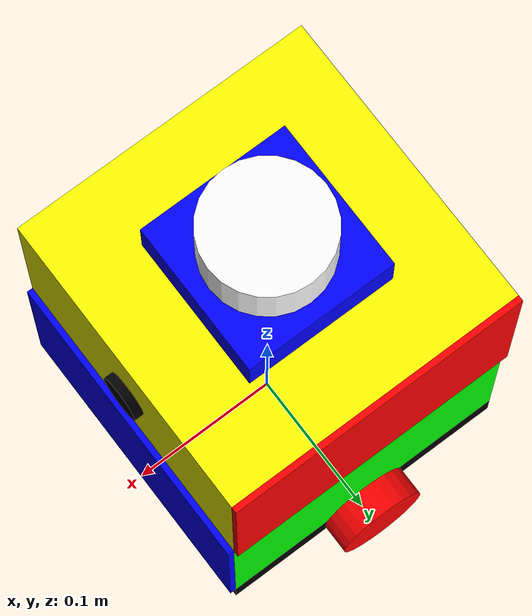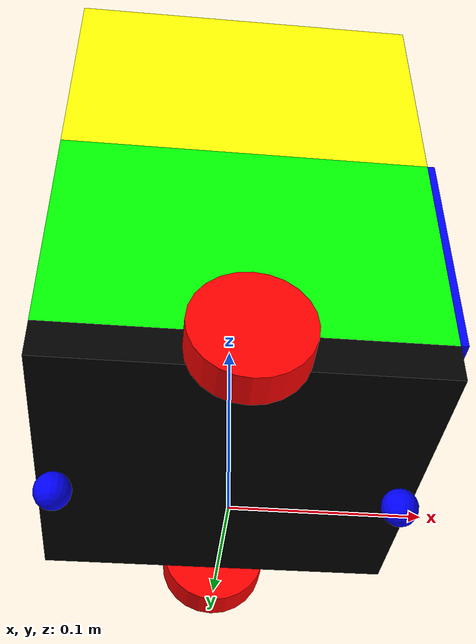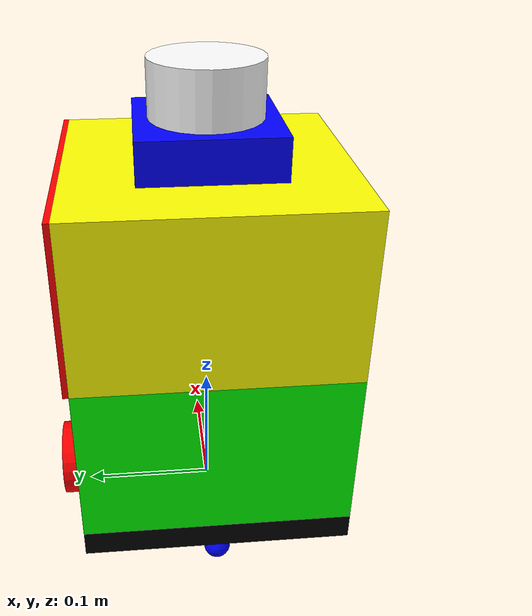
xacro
<?xml version="1.0"?>
<robot name="campus_delivery_robot" xmlns:xacro="http://www.ros.org/wiki/xacro">
  <xacro:include filename="$(find campus_delivery_robot)/urdf/materials.xacro"/>
  <xacro:include filename="$(find campus_delivery_robot)/urdf/base/bot_base.xacro"/>
  <xacro:include filename="$(find campus_delivery_robot)/urdf/body/main_body.xacro"/>
  <xacro:include filename="$(find campus_delivery_robot)/urdf/sensors/bot_lidar.xacro"/>
  <xacro:include filename="$(find campus_delivery_robot)/urdf/wheels/bot_wheels.xacro"/>
  <xacro:include filename="$(find campus_delivery_robot)/urdf/sensors/bot_cam.xacro"/>
  <xacro:bot_base prefix=""/>
  <xacro:cam_face prefix=""/>
  <xacro:main_body_below_hatch prefix=""/>
  <xacro:below_hatch_door prefix=""/>
  <xacro:above_hatch_door prefix=""/>
  <xacro:main_body_above_hatch prefix=""/>
  <xacro:bot_lidar prefix=""/>
  <xacro:bot_wheel prefix="left_" reflect="1"/>
  <xacro:bot_wheel prefix="right_" reflect="-1"/>
  <xacro:bot_castor prefix="front_" reflect="1"/>
  <xacro:bot_castor prefix="rear_" reflect="-1"/>
</robot>

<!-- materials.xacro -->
<robot xmlns:xacro="http://www.ros.org/wiki/xacro" name="campus_delivery_robot">
  <material name="red">
    <color rgba="1 0 0 1.0"/>
  </material>
  <material name="yellow">
    <color rgba="1 1 0 1.0"/>
  </material>
  <material name="white">
    <color rgba="1 1 1 1.0"/>
  </material>
  <material name="green">
    <color rgba="0 1 0 1.0"/>
  </material>
  <material name="blue">
    <color rgba="0 0 1 1.0"/>
  </material>
  <material name="grey">
    <color rgba="0.5 0.5 0.5 1.0"/>
    </material>
  <material name="black">
    <color rgba="0 0 0 1.0"/>
  </material>

</robot>

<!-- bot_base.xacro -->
<robot xmlns:xacro="http://www.ros.org/wiki/xacro" name="campus_delivery_robot">
    <xacro:property name="base_length" value="0.2" />
    <xacro:property name="base_width" value="0.2" />
    <xacro:property name="base_height" value="0.02" />
    <xacro:property name="ground_clearance" value="0.01" />

    <xacro:macro name="bot_base" params="prefix">
        <link name="base_floor"/>
        <link name="base_link">

            <visual>
                <geometry>
                    <box size="${base_length} ${base_width} ${base_height}" />
                </geometry>
                <origin xyz="0 0 ${ground_clearance}" rpy="0 0 0"/>
                <material name="black"/>
            </visual>

            <collision>
                <geometry>
                    <box size="${base_length} ${base_width} ${base_height}" />
                </geometry>
                <origin xyz="0 0 ${ground_clearance}" rpy="0 0 0"/>

            </collision>

        </link>
        <joint name="base_floor_joint" type="fixed">
            <parent link="base_floor"/>
            <child link="base_link"/>
            <origin xyz="0 0 ${wheel_radius/2}" rpy="0 0 0"/>
        </joint>
    </xacro:macro>

</robot>

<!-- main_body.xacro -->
<robot xmlns:xacro="http://www.ros.org/wiki/xacro" >
   <xacro:property name="hatch_main_base_length" value="0.2"/>
   <xacro:property name="main_base_height" value="0.25"/>
   <xacro:property name="hatch_main_base_width" value="0.2"/>
   <xacro:property name="hatch_main_base_height" value="${main_base_height/2}"/>
   <xacro:property name="door_t" value="0.004"/>

  <xacro:macro name="main_body_below_hatch" params="prefix">
    <link name="main_body_below_hatch_link">
     <visual>
       <geometry>
         <box size="${hatch_main_base_length} ${hatch_main_base_width} ${hatch_main_base_height}"/>
       </geometry>
       <origin xyz="0 0 0" rpy="0 0 0"/>
      <material name="green"/>
     </visual>
     <collision>
       <geometry>
         <box size="${hatch_main_base_length} ${hatch_main_base_width} ${hatch_main_base_height}"/>
       </geometry>
       <origin xyz="0 0 0" rpy="0 0 0"/>
     </collision>
    </link>

     <joint name="base_main_body_below_hatch_joint" type="fixed">
  <parent link="base_link"/>
  <child  link="main_body_below_hatch_link"/>
  <origin xyz="0 0 ${hatch_main_base_height/2 + base_height}" rpy="0 0 0"/>
</joint>
</xacro:macro>

<xacro:macro name="below_hatch_door" params="prefix">
  <link name="below_hatch_door_link">
    <visual>
      <origin xyz="${door_t/2} ${-hatch_main_base_width/2} 0" rpy="0 0 0"/>
      <geometry>
      <box size="${door_t} ${hatch_main_base_width} ${hatch_main_base_height}"/>
      </geometry>
      <material name="blue"/>
    </visual>
    <collision>
      <origin xyz="${door_t/2} ${-hatch_main_base_width/2} 0" rpy="0 0 0"/>
      <geometry>
      <box size="${door_t} ${hatch_main_base_width} ${hatch_main_base_height}"/>
      </geometry>
    </collision>
  </link>

  <joint name="below_hatch_door_joint" type="revolute">
    <parent link="main_body_below_hatch_link"/>
    <child  link="below_hatch_door_link"/>
    <origin xyz="${hatch_main_base_length/2} ${hatch_main_base_width/2} 0" rpy="0 0 0"/>
    <axis xyz="0 0 1"/>
    <limit lower="0" upper="1.57" effort="5.0" velocity="1.0"/>
  </joint>
</xacro:macro>

  <xacro:macro name="main_body_above_hatch" params="prefix">
    <link name="main_body_above_hatch_link">
     <visual>
       <geometry>
         <box size="${hatch_main_base_length} ${hatch_main_base_width} ${hatch_main_base_height}"/>
       </geometry>
       <origin xyz="0 0 0" rpy="0 0 0"/>
      <material name="yellow"/>
     </visual>
     <collision>
       <geometry>
         <box size="${hatch_main_base_length} ${hatch_main_base_width} ${hatch_main_base_height}"/>
       </geometry>
       <origin xyz="0 0 0" rpy="0 0 0"/>
     </collision>
    </link>

    <joint name="base_main_body_above_hatch_joint" type="fixed">
  <parent link="main_body_below_hatch_link"/>
  <child  link="main_body_above_hatch_link"/>
  <origin xyz="0 0 ${hatch_main_base_height}" rpy="0 0 0"/>
</joint>
</xacro:macro>

<xacro:macro name="above_hatch_door" params="prefix">
  <link name="above_hatch_door_link">
    <visual>
      <origin xyz="${-hatch_main_base_length/2} ${door_t/2} 0" rpy="0 0 0"/>
      <geometry>
      <box size="${hatch_main_base_length} ${door_t} ${hatch_main_base_height}"/>
      </geometry>
     <material name="red"/>
    </visual>
    <collision>
      <origin xyz="${-hatch_main_base_length/2} ${door_t/2} 0" rpy="0 0 0"/>
      <geometry>
      <box size="${hatch_main_base_length} ${door_t} ${hatch_main_base_height}"/>
      </geometry>
    </collision>
  </link>

  <joint name="above_hatch_door_joint" type="revolute">
    <parent link="main_body_above_hatch_link"/>
    <child  link="above_hatch_door_link"/>
    <origin xyz="${hatch_main_base_length/2} ${hatch_main_base_width/2} 0" rpy="0 0 0"/>
    <axis xyz="0 0 -1"/>
    <limit lower="0" upper="1.57" effort="5.0" velocity="1.0"/>
  </joint>
</xacro:macro>

</robot>

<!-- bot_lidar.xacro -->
<robot xmlns:xacro="http://www.ros.org/wiki/xacro" name="campus_delivery_robot">
   <xacro:property name="sensor_mount_height" value="0.03"/>
   <xacro:property name="sensor_mount_length" value="0.1"/>
   <xacro:property name="sensor_mount_width" value="0.1"/>
   <xacro:property name="sensor_mount_x_off" value="0"/>
   <xacro:property name="lidar_radius" value="0.04"/>
   <xacro:property name="lidar_height" value="0.04"/>

  <xacro:macro name="bot_lidar" params="prefix">
    <link name="sensor_mount_link">
    <visual>
    <geometry>
       <box size="${sensor_mount_length} ${sensor_mount_width} ${sensor_mount_height}"/>
        </geometry>
        <origin xyz="0 0 ${sensor_mount_height/2}" rpy="0 0 0"/>
          <material name="blue"/>

    </visual>
    <collision>
           <geometry>
       <box size="${sensor_mount_length} ${sensor_mount_width} ${sensor_mount_height}"/>
        </geometry>
        <origin xyz="0 0 ${sensor_mount_height/2}" rpy="0 0 0"/>
    </collision>
    </link>
    <joint name="base_sensor_mount_joint" type="fixed">
            <parent link="base_link"/>
            <child link="sensor_mount_link"/>
            <origin xyz="${sensor_mount_x_off} 0 ${ base_height + main_base_height }" rpy="0 0 0"/>
        </joint>

     <link name="lidar_sensor_link">
        <visual>
        <geometry>
         <cylinder radius="${lidar_radius}" length="${lidar_height}"/>
        </geometry>
        <origin xyz="0 0 ${lidar_height/2}" rpy="0 0 0"/>
        <material name="white"/>
        </visual>
        <collision>
        <geometry>
         <cylinder radius="${lidar_radius}" length="${lidar_height}"/>
        </geometry>
        <origin xyz="0 0 ${lidar_height/2}" rpy="0 0 0"/>
        </collision>
     </link>

      <joint name="lidar_sensor_joint" type="fixed">
            <parent link="sensor_mount_link"/>
            <child link="lidar_sensor_link"/>
            <origin xyz="0 0 ${sensor_mount_height}" rpy="0 0 0"/>

      </joint>

  </xacro:macro>

</robot>

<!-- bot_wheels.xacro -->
<robot xmlns:xacro="http://www.ros.org/wiki/xacro">
   <xacro:property name="wheel_radius" value="0.03"/>
   <xacro:property name="wheel_length" value="0.02"/>
   <xacro:property name="castor_radius" value="0.01"/>
   <xacro:property name="castor_xoff" value="0.09"/>

   <xacro:macro name="bot_wheel" params="prefix reflect">
     <link name="${prefix}wheel_link">
       <visual>
       <geometry>
           <cylinder radius="${wheel_radius}" length="${wheel_length}"/>
       </geometry>
         <origin xyz="0 ${reflect*wheel_length/2} 0" rpy="${pi/2} 0 0"/>
       <material name="red"/>
       </visual>
       <collision>
          <geometry>
          <cylinder radius="${wheel_radius}" length="${wheel_length}"/>
          </geometry>
          <origin xyz="0 ${reflect*wheel_length/2} 0" rpy="${pi/2} 0 0"/>
       </collision>
     </link>
     <joint name="base_${prefix}wheel_joint" type="continuous">
        <parent link="base_link"/>
        <child link="${prefix}wheel_link"/>
        <origin xyz="0 ${reflect* base_width/2} ${ground_clearance}" rpy="0 0 0"/>
        <axis xyz="0 1 0"/>
     </joint>
   </xacro:macro>

   <xacro:macro name="bot_castor" params="prefix reflect">
     <link name="${prefix}castor_wheel_link">
     <visual>
       <geometry>
         <sphere radius="${castor_radius}"/>
       </geometry>
       <origin xyz="0 0 ${-castor_radius} " rpy="0 0 0 "  />
       <material name="blue"/>
     </visual>
     <collision>
       <geometry>
         <sphere radius="${castor_radius}"/>
       </geometry>
       <origin xyz="0 0 ${-castor_radius} " rpy="0 0 0 "  />
     </collision>
    </link>

    <joint name="${prefix}castor_wheel_joint" type="fixed">
     <parent link="base_link"/>
     <child link="${prefix}castor_wheel_link"/>
     <origin xyz="${reflect*castor_xoff} 0 0" rpy="0 0 0"/>
     </joint>

   </xacro:macro>

</robot>

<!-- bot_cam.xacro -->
<robot xmlns:xacro="http://www.ros.org/wiki/xacro" >

  <xacro:property name="camera_radius" value="0.015"/>
  <xacro:property name="cam_z_padding" value="0.05"/>
  <xacro:property name="camera_length" value="0.006"/>
  <xacro:property name="cam_z_elevation" value="${base_height + hatch_main_base_height*1.5}"/>

  <xacro:macro name="cam_face" params="prefix">

    <link name="camera_link">
  <visual>
    <geometry>
      <cylinder radius="${camera_radius}" length="${camera_length}"/>
    </geometry>
    <origin xyz="${camera_length/2} 0 0" rpy="0 ${pi/2} 0"/>
    <material name="black"/>
  </visual>
  <collision>
    <geometry>
      <cylinder radius="${camera_radius}" length="${camera_length}"/>
    </geometry>
    <origin xyz="${camera_length/2} 0 0" rpy="0 ${pi/2} 0"/>
  </collision>
</link>

<joint name="camera_joint" type="fixed">
  <parent link="base_link"/>
  <child link="camera_link"/>
  <origin xyz="${base_length/2} 0 ${cam_z_elevation}" rpy="0 0 0"/>
</joint>

  </xacro:macro>

</robot>
